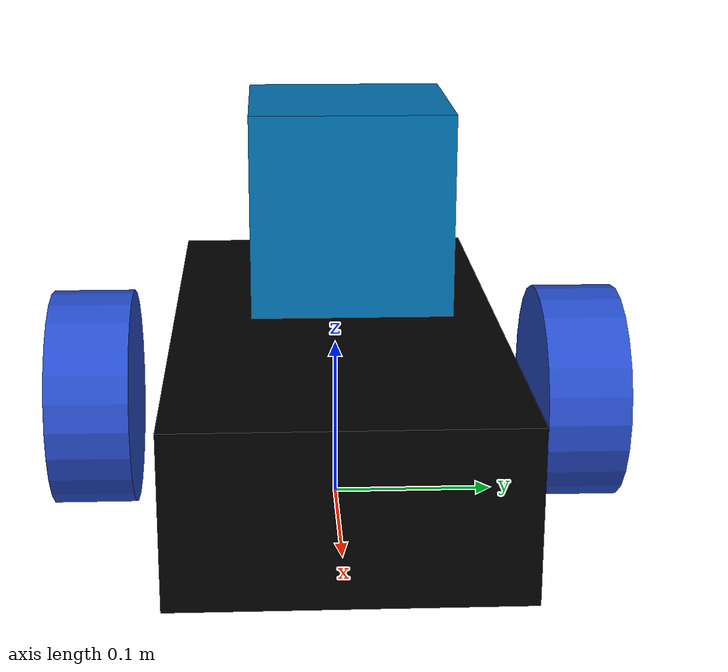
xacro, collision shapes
<?xml version='1.0'?>

<robot name="myrobot" xmlns:xacro="http://www.ros.org/wiki/xacro">

  <xacro:property name="cameraSize" value="0.05"/>
  <xacro:property name="cameraMass" value="0.1"/>

  <xacro:include filename="$(find robomuse_description)/urdf/robomuse.gazebo" />
  <xacro:include filename="$(find robomuse_description)/urdf/materials.xacro" />
  <xacro:include filename="$(find robomuse_description)/urdf/macros.xacro" />

  <link name="base_link">

  </link>

  <joint name="base_joint" type="fixed">
  <parent link="base_link"/>
  <child link="chassis"/>
  <origin xyz="0 0 0.0666" rpy="0 0 0"/>
  </joint>

  <link name='chassis'>

    <inertial>
      <mass value="15.0"/>
      <origin xyz="0 0 0" rpy=" 0 0 0"/>
      <inertia
          ixx="0.5" ixy="0" ixz="0"
          iyy="0.8" iyz="0"
          izz="1.0"
      />
    </inertial>

    <collision name='collision'>
      <origin xyz="0 0 0" rpy="0 0 0"/>
      <geometry>
        <box size=".4 .2 .1"/>
      </geometry>
    </collision>

   <visual name='chassis_visual'>
      <origin xyz="0.5348 0.21 -0.252" rpy=" 0 0 -1.57"/>
      <geometry>
        <mesh filename="package://robomuse_description/meshes/chassis.STL" />
      </geometry>
      <material name="brown"/>
    </visual>

    <collision name='caster_collision'>
      <origin xyz="-0.15 0 -0.0333" rpy=" 0 0 0"/>
      <geometry>
        <sphere radius="0.0333"/>
      </geometry>
      <surface>
        <friction>
          <ode>
            <mu>0.3</mu>
            <mu2>0.3</mu2>
            <slip1>0.0</slip1>
            <slip2>0.0</slip2>
          </ode>
        </friction>
      </surface>
    </collision>

    <visual name='caster_visual'>
      <origin xyz="-0.15 0 -0.05" rpy=" 0 0 0"/>
      <geometry>
        <sphere radius="0.0005"/>
      </geometry>
    </visual>

    <collision name='caster_front_collision'>
      <origin xyz="0.15 0 -0.0333" rpy=" 0 0 0"/>
      <geometry>
        <sphere radius="0.0333"/>
      </geometry>
      <surface>
        <friction>
          <ode>
            <mu>0.3</mu>
            <mu2>0.3</mu2>
            <slip1>0.0</slip1>
            <slip2>0.0</slip2>
          </ode>
        </friction>
      </surface>
    </collision>

    <visual name='caster_front_visual'>
      <origin xyz="0.15 0 -0.05" rpy=" 0 0 0"/>
      <geometry>
        <sphere radius="0.0005"/>
      </geometry>
    </visual>

  </link>

  <link name="left_wheel">
    <collision name="collision">
      <origin xyz="0 0 0" rpy="0 1.5707 1.5707"/>
      <geometry>
        <cylinder radius="0.0666" length="0.05"/>
      </geometry>
    </collision>
     <visual name="left_wheel_visual">
      <origin xyz="0 0.027 0" rpy="1.57 0 0"/>
       <geometry>
        <mesh filename="package://robomuse_description/meshes/lwheel.STL" />
      </geometry>
    </visual>
    <inertial>
      <origin xyz="0 0 0" rpy="0 1.5707 1.5707"/>
      <mass value="5"/>
      <inertia
        ixx=".1" ixy="0.0" ixz="0.0"
        iyy=".1" iyz="0.0"
        izz=".1"/>
    </inertial>
  </link>

  <link name="right_wheel">
    <collision name="collision">
      <origin xyz="0 0 0" rpy="0 1.5707 1.5707"/>
      <geometry>
        <cylinder radius="0.0666" length="0.05"/>
      </geometry>
    </collision>
    <visual name="right_wheel_visual">
      <origin xyz="0 -0.1 0" rpy="1.57 0 0"/>
       <geometry>
        <mesh filename="package://robomuse_description/meshes/rwheel.STL" />
      </geometry>
    </visual>
    <inertial>
      <origin xyz="0 0 0" rpy="0 1.5707 1.5707"/>
      <mass value="5"/>
      <inertia
        ixx=".1" ixy="0.0" ixz="0.0"
        iyy=".1" iyz="0.0"
        izz=".1"/>
    </inertial>
  </link>

  <joint type="continuous" name="left_wheel_hinge">
    <origin xyz="0 0.15 0" rpy="0 0 0"/>
    <child link="left_wheel"/>
    <parent link="chassis"/>
    <axis xyz="0 1 0" rpy="0 0 0"/>
    <limit effort="10000" velocity="1000"/>
    <dynamics damping="5.0" friction="2.0"/>
  </joint>

  <joint type="continuous" name="right_wheel_hinge">
    <origin xyz="0 -0.15 0" rpy="0 0 0"/>
    <child link="right_wheel"/>
    <parent link="chassis"/>
    <axis xyz="0 1 0" rpy="0 0 0"/>
    <limit effort="10000" velocity="1000"/>
    <dynamics damping="5.0" friction="2.0"/>
  </joint>

  <link name="laser">
    <collision>
      <origin xyz="0 0 0" rpy="0 0 0"/>
      <geometry>
    <box size="0.1 0.1 0.1"/>
      </geometry>
    </collision>

    <visual>
      <origin xyz="0 0 0" rpy="0 0 0"/>
      <geometry>
        <mesh filename="package://robomuse_description/meshes/rplidar.dae" />
      </geometry>
    </visual>

    <inertial>
      <mass value="1e-5" />
      <origin xyz="0 0 0" rpy="0 0 0"/>
      <inertia ixx="1e-6" ixy="0" ixz="0" iyy="1e-6" iyz="0" izz="1e-6" />
    </inertial>
  </link>

  <joint name="rplidar_joint" type="fixed">
    <axis xyz="0 1 0" />
    <origin xyz="0.15 0 0.16" rpy="0 0 3.14"/>
    <parent link="chassis"/>
    <child link="laser"/>
  </joint>

  <transmission name="left_wheel_trans">
    <type>transmission_interface/SimpleTransmission</type>
    <joint name="left_wheel_hinge">
      <hardwareInterface>hardware_interface/VelocityJointInterface</hardwareInterface>
    </joint>
    <actuator name="left_wheel_motor">
      <hardwareInterface>hardware_interface/VelocityJointInterface</hardwareInterface>
      <mechanicalReduction>1</mechanicalReduction>
    </actuator>
  </transmission>

  <transmission name="right_wheel_trans">
    <type>transmission_interface/SimpleTransmission</type>
    <joint name="right_wheel_hinge">
      <hardwareInterface>hardware_interface/VelocityJointInterface</hardwareInterface>
    </joint>
    <actuator name="right_wheel_motor">
      <hardwareInterface>hardware_interface/VelocityJointInterface</hardwareInterface>
      <mechanicalReduction>1</mechanicalReduction>
    </actuator>
  </transmission>

</robot>

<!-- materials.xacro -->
<robot>

  <material name="black">
    <color rgba="0.0 0.0 0.0 1.0"/>
  </material>

  <material name="blue">
  <color rgba="0.0 0.0 1.0 1.0"/>
  </material>

  <material name="green">
    <color rgba="0.0 0.0 0.0 1.0"/>
  </material>

  <material name="grey">
    <color rgba="0.5 0.5 0.5 1.0"/>
  </material>

  <material name="orange">
    <color rgba="0.0 0.0 0.0 1.0"/>
  </material>

  <material name="brown">
    <color rgba="0 0 0 1.0"/>
  </material>

  <material name="red">
      <color rgba="0 0 0 1.0"/>
  </material>

  <material name="white">
    <color rgba="1.0 1.0 1.0 1.0"/>
  </material>

</robot>
